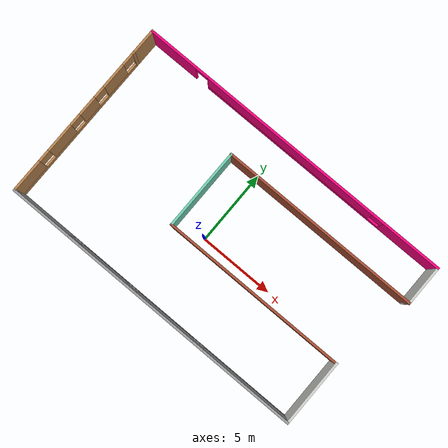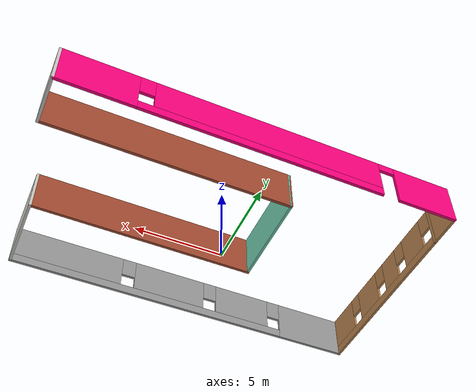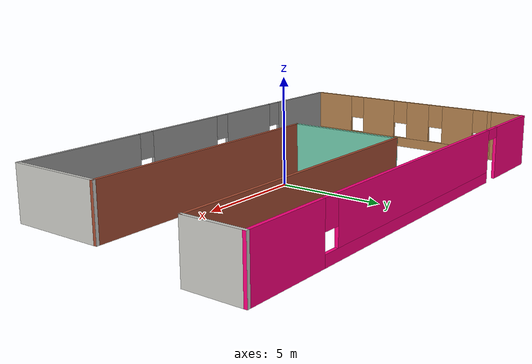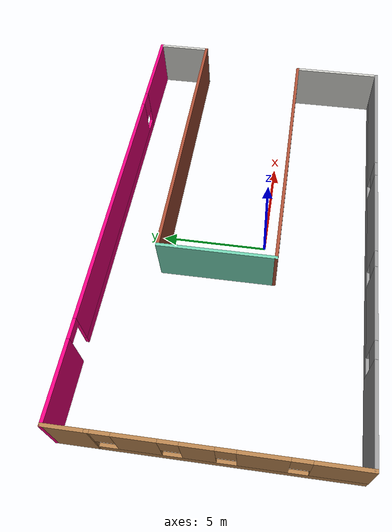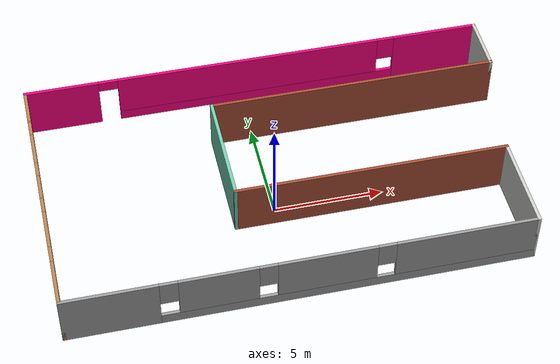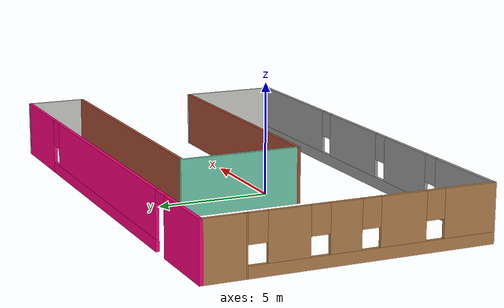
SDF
<?xml version='1.0'?>
<sdf version='1.6'>
  <model name='room'>
    <pose frame=''>0.678101 1.13819 0 0 -0 0</pose>
    <link name='Wall_1'>
      <pose frame=''>-10.8 -0.85 0 0 0 -1.5708</pose>
      <visual name='Wall_1_Visual_0'>
        <pose frame=''>-5.2715 0 1.25 0 -0 0</pose>
        <geometry>
          <box>
            <size>0.207004 0.15 2.5</size>
          </box>
        </geometry>
        <material>
          <script>
            <uri>file://media/materials/scripts/gazebo.material</uri>
            <name>Gazebo/Wood</name>
          </script>
          <ambient>1 1 1 1</ambient>
        </material>
      </visual>
      <collision name='Wall_1_Collision_0'>
        <geometry>
          <box>
            <size>0.207004 0.15 2.5</size>
          </box>
        </geometry>
        <pose frame=''>-5.2715 0 1.25 0 -0 0</pose>
      </collision>
      <visual name='Wall_1_Visual_1'>
        <pose frame=''>0.103502 0 0.25 0 -0 0</pose>
        <geometry>
          <box>
            <size>10.543 0.15 0.5</size>
          </box>
        </geometry>
        <material>
          <script>
            <uri>file://media/materials/scripts/gazebo.material</uri>
            <name>Gazebo/Wood</name>
          </script>
          <ambient>1 1 1 1</ambient>
        </material>
      </visual>
      <collision name='Wall_1_Collision_1'>
        <geometry>
          <box>
            <size>10.543 0.15 0.5</size>
          </box>
        </geometry>
        <pose frame=''>0.103502 0 0.25 0 -0 0</pose>
      </collision>
      <visual name='Wall_1_Visual_2'>
        <pose frame=''>-3.49581 0 1.5 0 -0 0</pose>
        <geometry>
          <box>
            <size>1.74437 0.15 2</size>
          </box>
        </geometry>
        <material>
          <script>
            <uri>file://media/materials/scripts/gazebo.material</uri>
            <name>Gazebo/Wood</name>
          </script>
          <ambient>1 1 1 1</ambient>
        </material>
      </visual>
      <collision name='Wall_1_Collision_2'>
        <geometry>
          <box>
            <size>1.74437 0.15 2</size>
          </box>
        </geometry>
        <pose frame=''>-3.49581 0 1.5 0 -0 0</pose>
      </collision>
      <visual name='Wall_1_Visual_3'>
        <pose frame=''>-1.15962 0 1.5 0 -0 0</pose>
        <geometry>
          <box>
            <size>1.32802 0.15 2</size>
          </box>
        </geometry>
        <material>
          <script>
            <uri>file://media/materials/scripts/gazebo.material</uri>
            <name>Gazebo/Wood</name>
          </script>
          <ambient>1 1 1 1</ambient>
        </material>
      </visual>
      <collision name='Wall_1_Collision_3'>
        <geometry>
          <box>
            <size>1.32802 0.15 2</size>
          </box>
        </geometry>
        <pose frame=''>-1.15962 0 1.5 0 -0 0</pose>
      </collision>
      <visual name='Wall_1_Visual_4'>
        <pose frame=''>1.29222 0 1.5 0 -0 0</pose>
        <geometry>
          <box>
            <size>1.97567 0.15 2</size>
          </box>
        </geometry>
        <material>
          <script>
            <uri>file://media/materials/scripts/gazebo.material</uri>
            <name>Gazebo/Wood</name>
          </script>
          <ambient>1 1 1 1</ambient>
        </material>
      </visual>
      <collision name='Wall_1_Collision_4'>
        <geometry>
          <box>
            <size>1.97567 0.15 2</size>
          </box>
        </geometry>
        <pose frame=''>1.29222 0 1.5 0 -0 0</pose>
      </collision>
      <visual name='Wall_1_Visual_5'>
        <pose frame=''>4.22753 0 1.5 0 -0 0</pose>
        <geometry>
          <box>
            <size>2.29494 0.15 2</size>
          </box>
        </geometry>
        <material>
          <script>
            <uri>file://media/materials/scripts/gazebo.material</uri>
            <name>Gazebo/Wood</name>
          </script>
          <ambient>1 1 1 1</ambient>
        </material>
      </visual>
      <collision name='Wall_1_Collision_5'>
        <geometry>
          <box>
            <size>2.29494 0.15 2</size>
          </box>
        </geometry>
        <pose frame=''>4.22753 0 1.5 0 -0 0</pose>
      </collision>
      <visual name='Wall_1_Visual_6'>
        <pose frame=''>-4.768 0 1.9 0 -0 0</pose>
        <geometry>
          <box>
            <size>0.8 0.15 1.2</size>
          </box>
        </geometry>
        <material>
          <script>
            <uri>file://media/materials/scripts/gazebo.material</uri>
            <name>Gazebo/Wood</name>
          </script>
          <ambient>1 1 1 1</ambient>
        </material>
      </visual>
      <collision name='Wall_1_Collision_6'>
        <geometry>
          <box>
            <size>0.8 0.15 1.2</size>
          </box>
        </geometry>
        <pose frame=''>-4.768 0 1.9 0 -0 0</pose>
      </collision>
      <visual name='Wall_1_Visual_7'>
        <pose frame=''>-2.22363 0 1.9 0 -0 0</pose>
        <geometry>
          <box>
            <size>0.8 0.15 1.2</size>
          </box>
        </geometry>
        <material>
          <script>
            <uri>file://media/materials/scripts/gazebo.material</uri>
            <name>Gazebo/Wood</name>
          </script>
          <ambient>1 1 1 1</ambient>
        </material>
      </visual>
      <collision name='Wall_1_Collision_7'>
        <geometry>
          <box>
            <size>0.8 0.15 1.2</size>
          </box>
        </geometry>
        <pose frame=''>-2.22363 0 1.9 0 -0 0</pose>
      </collision>
      <visual name='Wall_1_Visual_8'>
        <pose frame=''>-0.095613 0 1.9 0 -0 0</pose>
        <geometry>
          <box>
            <size>0.8 0.15 1.2</size>
          </box>
        </geometry>
        <material>
          <script>
            <uri>file://media/materials/scripts/gazebo.material</uri>
            <name>Gazebo/Wood</name>
          </script>
          <ambient>1 1 1 1</ambient>
        </material>
      </visual>
      <collision name='Wall_1_Collision_8'>
        <geometry>
          <box>
            <size>0.8 0.15 1.2</size>
          </box>
        </geometry>
        <pose frame=''>-0.095613 0 1.9 0 -0 0</pose>
      </collision>
      <visual name='Wall_1_Visual_9'>
        <pose frame=''>2.68006 0 1.9 0 -0 0</pose>
        <geometry>
          <box>
            <size>0.8 0.15 1.2</size>
          </box>
        </geometry>
        <material>
          <script>
            <uri>file://media/materials/scripts/gazebo.material</uri>
            <name>Gazebo/Wood</name>
          </script>
          <ambient>1 1 1 1</ambient>
        </material>
      </visual>
      <collision name='Wall_1_Collision_9'>
        <geometry>
          <box>
            <size>0.8 0.15 1.2</size>
          </box>
        </geometry>
        <pose frame=''>2.68006 0 1.9 0 -0 0</pose>
      </collision>
    </link>
    <link name='Wall_2'>
      <pose frame=''>-0.5 -6.15 0 0 -0 0</pose>
      <visual name='Wall_2_Visual_0'>
        <pose frame=''>-8.2707 0 1.25 0 -0 0</pose>
        <geometry>
          <box>
            <size>4.2086 0.15 2.5</size>
          </box>
        </geometry>
        <material>
          <script>
            <uri>file://media/materials/scripts/gazebo.material</uri>
            <name>Gazebo/Grey</name>
          </script>
          <ambient>1 1 1 1</ambient>
        </material>
      </visual>
      <collision name='Wall_2_Collision_0'>
        <geometry>
          <box>
            <size>4.2086 0.15 2.5</size>
          </box>
        </geometry>
        <pose frame=''>-8.2707 0 1.25 0 -0 0</pose>
      </collision>
      <visual name='Wall_2_Visual_1'>
        <pose frame=''>2.1043 0 0.25 0 -0 0</pose>
        <geometry>
          <box>
            <size>16.5414 0.15 0.5</size>
          </box>
        </geometry>
        <material>
          <script>
            <uri>file://media/materials/scripts/gazebo.material</uri>
            <name>Gazebo/Grey</name>
          </script>
          <ambient>1 1 1 1</ambient>
        </material>
      </visual>
      <collision name='Wall_2_Collision_1'>
        <geometry>
          <box>
            <size>16.5414 0.15 0.5</size>
          </box>
        </geometry>
        <pose frame=''>2.1043 0 0.25 0 -0 0</pose>
      </collision>
      <visual name='Wall_2_Visual_2'>
        <pose frame=''>-3.64995 0 1.5 0 -0 0</pose>
        <geometry>
          <box>
            <size>3.4329 0.15 2</size>
          </box>
        </geometry>
        <material>
          <script>
            <uri>file://media/materials/scripts/gazebo.material</uri>
            <name>Gazebo/Grey</name>
          </script>
          <ambient>1 1 1 1</ambient>
        </material>
      </visual>
      <collision name='Wall_2_Collision_2'>
        <geometry>
          <box>
            <size>3.4329 0.15 2</size>
          </box>
        </geometry>
        <pose frame=''>-3.64995 0 1.5 0 -0 0</pose>
      </collision>
      <visual name='Wall_2_Visual_3'>
        <pose frame=''>1.034 0 1.5 0 -0 0</pose>
        <geometry>
          <box>
            <size>4.335 0.15 2</size>
          </box>
        </geometry>
        <material>
          <script>
            <uri>file://media/materials/scripts/gazebo.material</uri>
            <name>Gazebo/Grey</name>
          </script>
          <ambient>1 1 1 1</ambient>
        </material>
      </visual>
      <collision name='Wall_2_Collision_3'>
        <geometry>
          <box>
            <size>4.335 0.15 2</size>
          </box>
        </geometry>
        <pose frame=''>1.034 0 1.5 0 -0 0</pose>
      </collision>
      <visual name='Wall_2_Visual_4'>
        <pose frame=''>7.18825 0 1.5 0 -0 0</pose>
        <geometry>
          <box>
            <size>6.3735 0.15 2</size>
          </box>
        </geometry>
        <material>
          <script>
            <uri>file://media/materials/scripts/gazebo.material</uri>
            <name>Gazebo/Grey</name>
          </script>
          <ambient>1 1 1 1</ambient>
        </material>
      </visual>
      <collision name='Wall_2_Collision_4'>
        <geometry>
          <box>
            <size>6.3735 0.15 2</size>
          </box>
        </geometry>
        <pose frame=''>7.18825 0 1.5 0 -0 0</pose>
      </collision>
      <visual name='Wall_2_Visual_5'>
        <pose frame=''>-5.7664 0 1.9 0 -0 0</pose>
        <geometry>
          <box>
            <size>0.8 0.15 1.2</size>
          </box>
        </geometry>
        <material>
          <script>
            <uri>file://media/materials/scripts/gazebo.material</uri>
            <name>Gazebo/Grey</name>
          </script>
          <ambient>1 1 1 1</ambient>
        </material>
      </visual>
      <collision name='Wall_2_Collision_5'>
        <geometry>
          <box>
            <size>0.8 0.15 1.2</size>
          </box>
        </geometry>
        <pose frame=''>-5.7664 0 1.9 0 -0 0</pose>
      </collision>
      <visual name='Wall_2_Visual_6'>
        <pose frame=''>-1.5335 0 1.9 0 -0 0</pose>
        <geometry>
          <box>
            <size>0.8 0.15 1.2</size>
          </box>
        </geometry>
        <material>
          <script>
            <uri>file://media/materials/scripts/gazebo.material</uri>
            <name>Gazebo/Grey</name>
          </script>
          <ambient>1 1 1 1</ambient>
        </material>
      </visual>
      <collision name='Wall_2_Collision_6'>
        <geometry>
          <box>
            <size>0.8 0.15 1.2</size>
          </box>
        </geometry>
        <pose frame=''>-1.5335 0 1.9 0 -0 0</pose>
      </collision>
      <visual name='Wall_2_Visual_7'>
        <pose frame=''>3.60149 0 1.9 0 -0 0</pose>
        <geometry>
          <box>
            <size>0.8 0.15 1.2</size>
          </box>
        </geometry>
        <material>
          <script>
            <uri>file://media/materials/scripts/gazebo.material</uri>
            <name>Gazebo/Grey</name>
          </script>
          <ambient>1 1 1 1</ambient>
        </material>
      </visual>
      <collision name='Wall_2_Collision_7'>
        <geometry>
          <box>
            <size>0.8 0.15 1.2</size>
          </box>
        </geometry>
        <pose frame=''>3.60149 0 1.9 0 -0 0</pose>
      </collision>
    </link>
    <link name='Wall_3'>
      <collision name='Wall_3_Collision'>
        <geometry>
          <box>
            <size>4.5 0.15 2.5</size>
          </box>
        </geometry>
        <pose frame=''>0 0 1.25 0 -0 0</pose>
      </collision>
      <visual name='Wall_3_Visual'>
        <pose frame=''>0 0 1.25 0 -0 0</pose>
        <geometry>
          <box>
            <size>4.5 0.15 2.5</size>
          </box>
        </geometry>
        <material>
          <script>
            <uri>file://media/materials/scripts/gazebo.material</uri>
            <name>Gazebo/CeilingTiled</name>
          </script>
          <ambient>1 1 1 1</ambient>
        </material>
      </visual>
      <pose frame=''>9.8 -3.975 0 0 -0 1.5708</pose>
    </link>
    <link name='Wall_4'>
      <collision name='Wall_4_Collision'>
        <geometry>
          <box>
            <size>12.5 0.15 2.5</size>
          </box>
        </geometry>
        <pose frame=''>0 0 1.25 0 -0 0</pose>
      </collision>
      <visual name='Wall_4_Visual'>
        <pose frame=''>0 0 1.25 0 -0 0</pose>
        <geometry>
          <box>
            <size>12.5 0.15 2.5</size>
          </box>
        </geometry>
        <material>
          <script>
            <uri>file://media/materials/scripts/gazebo.material</uri>
            <name>Gazebo/Bricks</name>
          </script>
          <ambient>1 1 1 1</ambient>
        </material>
      </visual>
      <pose frame=''>3.625 -1.8 0 0 -0 3.14159</pose>
    </link>
    <link name='Wall_5'>
      <collision name='Wall_5_Collision'>
        <geometry>
          <box>
            <size>5.5 0.15 2.5</size>
          </box>
        </geometry>
        <pose frame=''>0 0 1.25 0 -0 0</pose>
      </collision>
      <visual name='Wall_5_Visual'>
        <pose frame=''>0 0 1.25 0 -0 0</pose>
        <geometry>
          <box>
            <size>5.5 0.15 2.5</size>
          </box>
        </geometry>
        <material>
          <script>
            <uri>file://media/materials/scripts/gazebo.material</uri>
            <name>Gazebo/Grey</name>
          </script>
          <ambient>0.435294 0.796078 0.67451 1</ambient>
        </material>
      </visual>
      <pose frame=''>-2.55 0.875 0 0 -0 1.5708</pose>
    </link>
    <link name='Wall_6'>
      <collision name='Wall_6_Collision'>
        <geometry>
          <box>
            <size>13.5 0.15 2.5</size>
          </box>
        </geometry>
        <pose frame=''>0 0 1.25 0 -0 0</pose>
      </collision>
      <visual name='Wall_6_Visual'>
        <pose frame=''>0 0 1.25 0 -0 0</pose>
        <geometry>
          <box>
            <size>13.5 0.15 2.5</size>
          </box>
        </geometry>
        <material>
          <script>
            <uri>file://media/materials/scripts/gazebo.material</uri>
            <name>Gazebo/Bricks</name>
          </script>
          <ambient>1 1 1 1</ambient>
        </material>
      </visual>
      <pose frame=''>4.125 3.55 0 0 -0 0</pose>
    </link>
    <link name='Wall_7'>
      <collision name='Wall_7_Collision'>
        <geometry>
          <box>
            <size>2.75 0.15 2.5</size>
          </box>
        </geometry>
        <pose frame=''>0 0 1.25 0 -0 0</pose>
      </collision>
      <visual name='Wall_7_Visual'>
        <pose frame=''>0 0 1.25 0 -0 0</pose>
        <geometry>
          <box>
            <size>2.75 0.15 2.5</size>
          </box>
        </geometry>
        <material>
          <script>
            <uri>file://media/materials/scripts/gazebo.material</uri>
            <name>Gazebo/CeilingTiled</name>
          </script>
          <ambient>1 1 1 1</ambient>
        </material>
      </visual>
      <pose frame=''>10.8 4.85 0 0 -0 1.5708</pose>
    </link>
    <link name='Wall_8'>
      <pose frame=''>0 6.15 0 0 -0 3.14159</pose>
      <visual name='Wall_8_Visual_0'>
        <pose frame=''>-8.83052 0 1.25 0 -0 0</pose>
        <geometry>
          <box>
            <size>4.08896 0.15 2.5</size>
          </box>
        </geometry>
        <material>
          <script>
            <uri>file://media/materials/scripts/gazebo.material</uri>
            <name>Gazebo/Grey</name>
          </script>
          <ambient>1 0 0.498039 1</ambient>
        </material>
      </visual>
      <collision name='Wall_8_Collision_0'>
        <geometry>
          <box>
            <size>4.08896 0.15 2.5</size>
          </box>
        </geometry>
        <pose frame=''>-8.83052 0 1.25 0 -0 0</pose>
      </collision>
      <visual name='Wall_8_Visual_1'>
        <pose frame=''>9.14266 0 1.25 0 -0 0</pose>
        <geometry>
          <box>
            <size>3.46468 0.15 2.5</size>
          </box>
        </geometry>
        <material>
          <script>
            <uri>file://media/materials/scripts/gazebo.material</uri>
            <name>Gazebo/Grey</name>
          </script>
          <ambient>1 0 0.498039 1</ambient>
        </material>
      </visual>
      <collision name='Wall_8_Collision_1'>
        <geometry>
          <box>
            <size>3.46468 0.15 2.5</size>
          </box>
        </geometry>
        <pose frame=''>9.14266 0 1.25 0 -0 0</pose>
      </collision>
      <visual name='Wall_8_Visual_2'>
        <pose frame=''>-0.137861 0 0.25 0 -0 0</pose>
        <geometry>
          <box>
            <size>13.2964 0.15 0.5</size>
          </box>
        </geometry>
        <material>
          <script>
            <uri>file://media/materials/scripts/gazebo.material</uri>
            <name>Gazebo/Grey</name>
          </script>
          <ambient>1 0 0.498039 1</ambient>
        </material>
      </visual>
      <collision name='Wall_8_Collision_2'>
        <geometry>
          <box>
            <size>13.2964 0.15 0.5</size>
          </box>
        </geometry>
        <pose frame=''>-0.137861 0 0.25 0 -0 0</pose>
      </collision>
      <visual name='Wall_8_Visual_3'>
        <pose frame=''>0.262139 0 1.5 0 -0 0</pose>
        <geometry>
          <box>
            <size>12.4964 0.15 2</size>
          </box>
        </geometry>
        <material>
          <script>
            <uri>file://media/materials/scripts/gazebo.material</uri>
            <name>Gazebo/Grey</name>
          </script>
          <ambient>1 0 0.498039 1</ambient>
        </material>
      </visual>
      <collision name='Wall_8_Collision_3'>
        <geometry>
          <box>
            <size>12.4964 0.15 2</size>
          </box>
        </geometry>
        <pose frame=''>0.262139 0 1.5 0 -0 0</pose>
      </collision>
      <visual name='Wall_8_Visual_4'>
        <pose frame=''>-6.38604 0 1.9 0 -0 0</pose>
        <geometry>
          <box>
            <size>0.8 0.15 1.2</size>
          </box>
        </geometry>
        <material>
          <script>
            <uri>file://media/materials/scripts/gazebo.material</uri>
            <name>Gazebo/Grey</name>
          </script>
          <ambient>1 0 0.498039 1</ambient>
        </material>
      </visual>
      <collision name='Wall_8_Collision_4'>
        <geometry>
          <box>
            <size>0.8 0.15 1.2</size>
          </box>
        </geometry>
        <pose frame=''>-6.38604 0 1.9 0 -0 0</pose>
      </collision>
      <visual name='Wall_8_Visual_5'>
        <pose frame=''>6.96032 0 2.25 0 -0 0</pose>
        <geometry>
          <box>
            <size>0.9 0.15 0.5</size>
          </box>
        </geometry>
        <material>
          <script>
            <uri>file://media/materials/scripts/gazebo.material</uri>
            <name>Gazebo/Grey</name>
          </script>
          <ambient>1 0 0.498039 1</ambient>
        </material>
      </visual>
      <collision name='Wall_8_Collision_5'>
        <geometry>
          <box>
            <size>0.9 0.15 0.5</size>
          </box>
        </geometry>
        <pose frame=''>6.96032 0 2.25 0 -0 0</pose>
      </collision>
    </link>
    <link name='Wall_9'>
      <collision name='Wall_9_Collision'>
        <geometry>
          <box>
            <size>1.85 0.15 2.5</size>
          </box>
        </geometry>
        <pose frame=''>0 0 1.25 0 -0 0</pose>
      </collision>
      <visual name='Wall_9_Visual'>
        <pose frame=''>0 0 1.25 0 -0 0</pose>
        <geometry>
          <box>
            <size>1.85 0.15 2.5</size>
          </box>
        </geometry>
        <material>
          <script>
            <uri>file://media/materials/scripts/gazebo.material</uri>
            <name>Gazebo/Wood</name>
          </script>
          <ambient>1 1 1 1</ambient>
        </material>
      </visual>
      <pose frame=''>-10.8 5.3 0 0 0 -1.5708</pose>
    </link>
    <static>1</static>
  </model>
</sdf>
